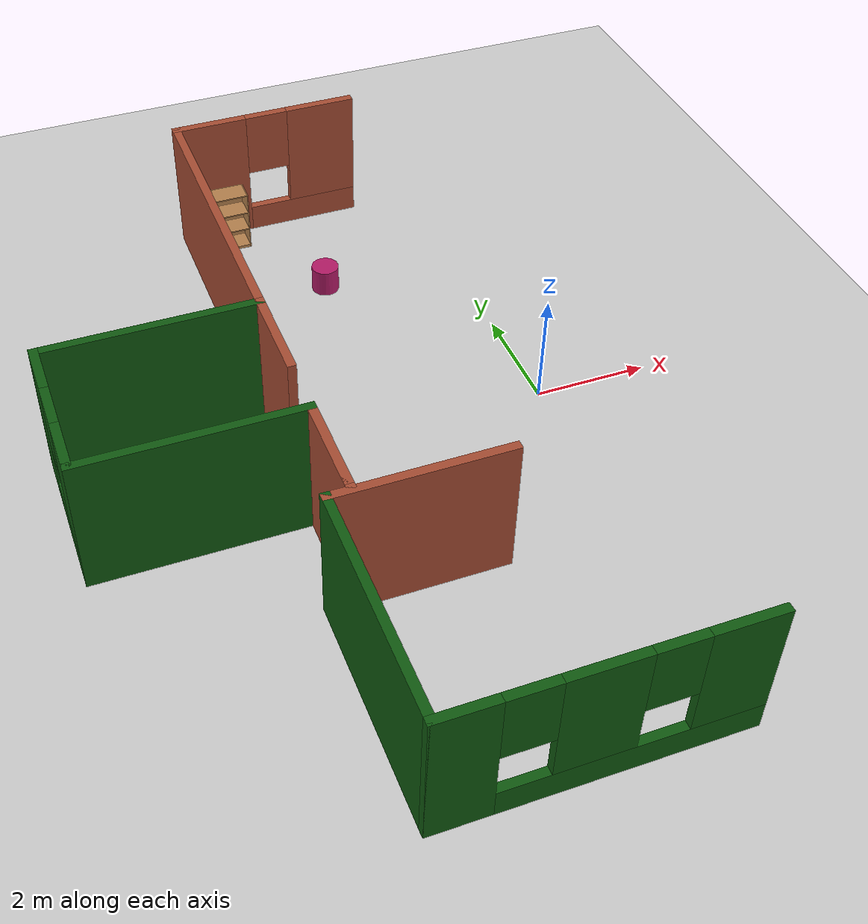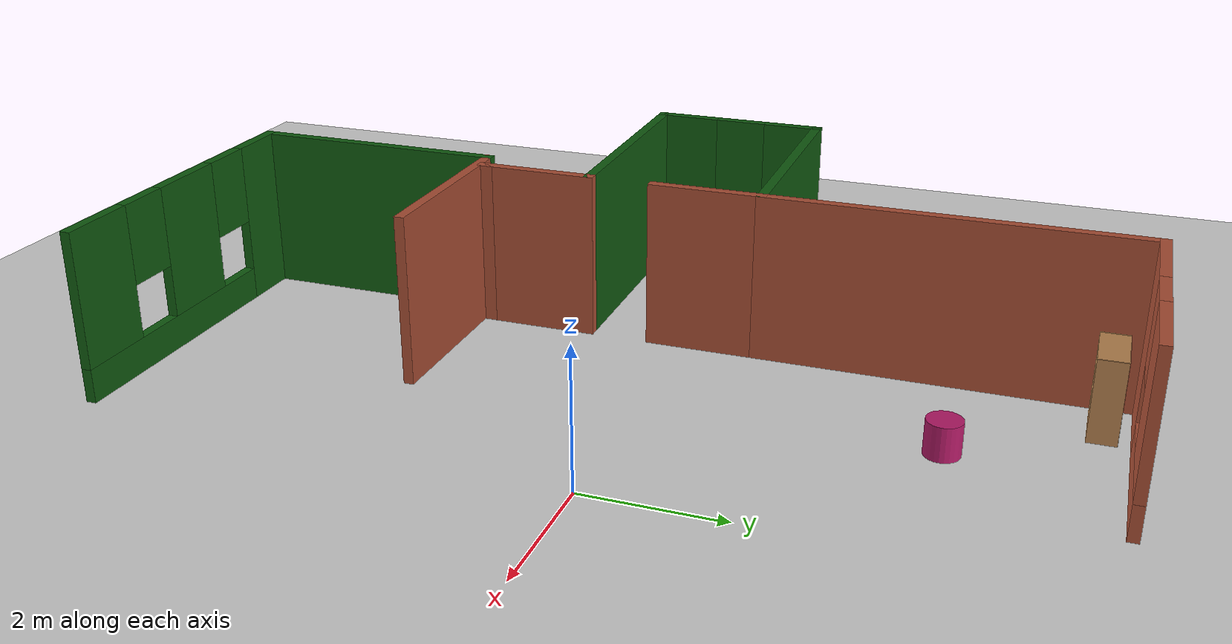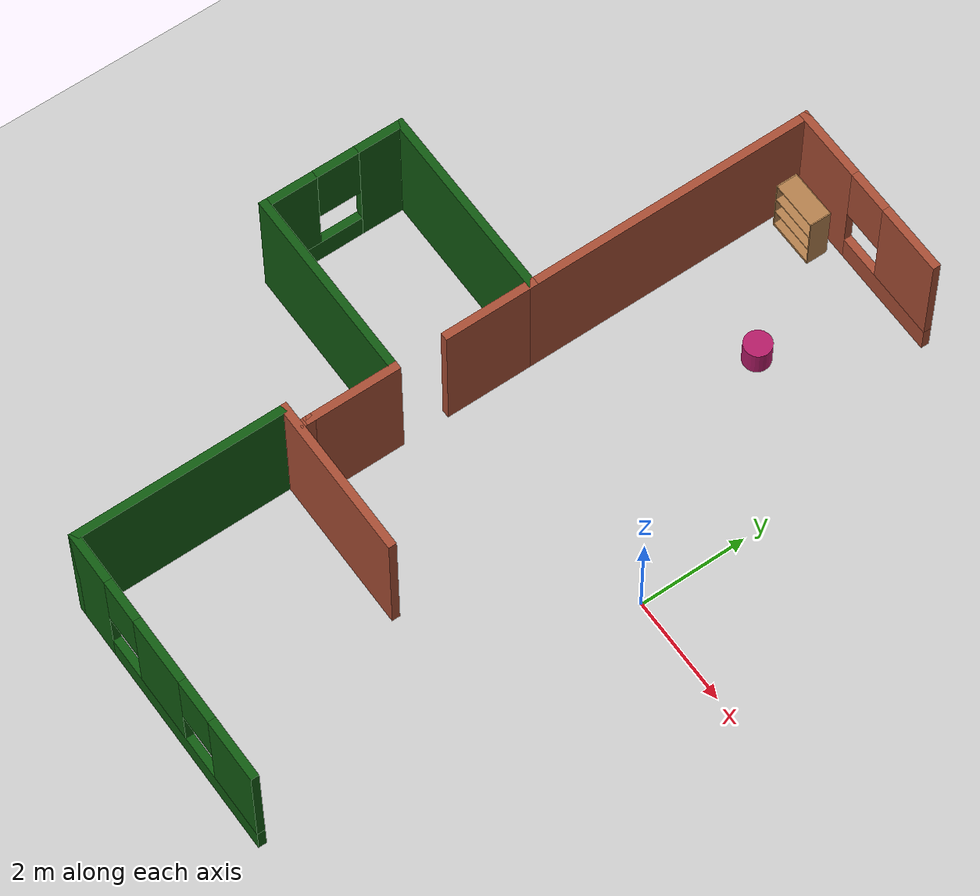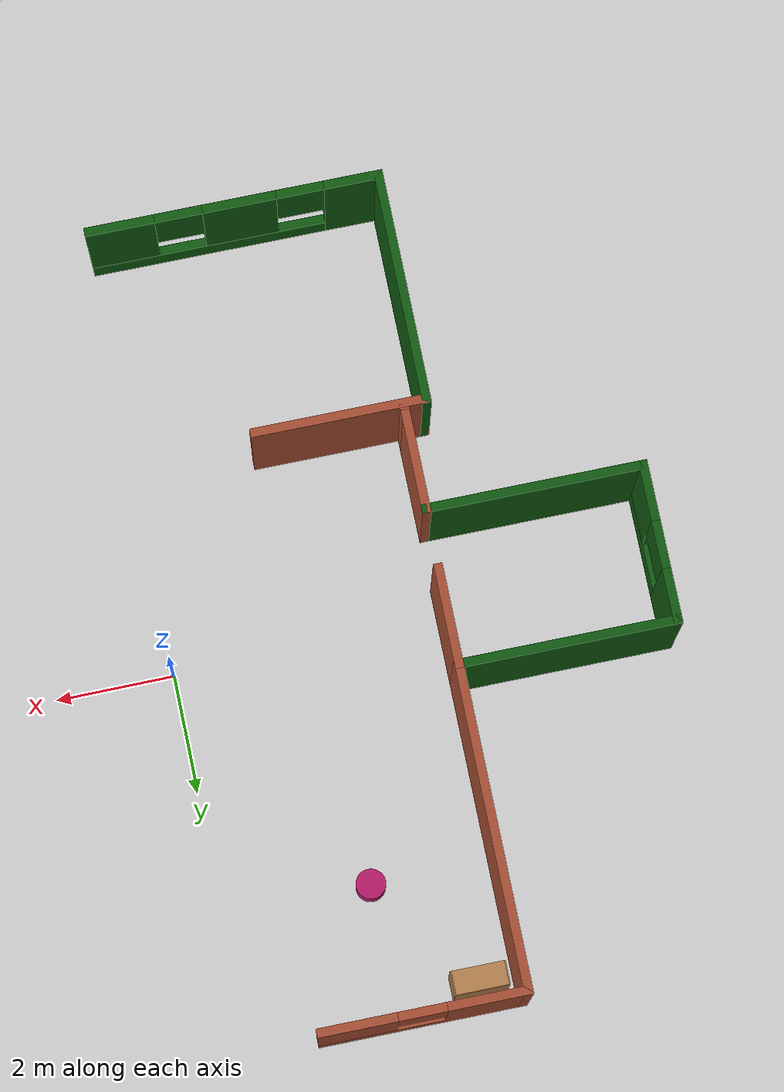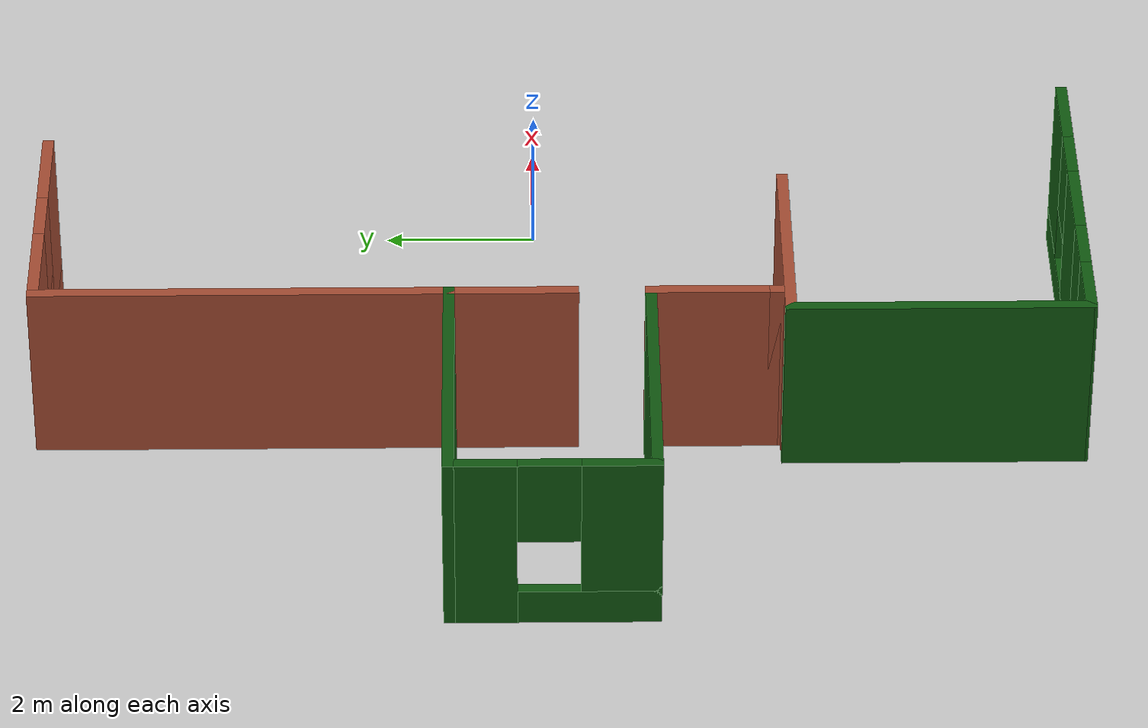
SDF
<sdf version="1.6">
 <world name="default">
  <model name="ground_plane">
   <static>1</static>
   <link name="link">
    <collision name="collision">
     <geometry><plane><normal>0 0 1</normal><size>100 100</size></plane></geometry>
     <surface>
      <contact><collide_bitmask>65535</collide_bitmask></contact>
      <friction><ode><mu>100</mu><mu2>50</mu2></ode></friction>
     </surface>
    </collision>
    <visual name="visual">
     <cast_shadows>0</cast_shadows>
     <geometry><plane><normal>0 0 1</normal><size>100 100</size></plane></geometry>
     <material>
      <script><uri>file://media/materials/scripts/gazebo.material</uri><name>Gazebo/Grey</name></script>
     </material>
    </visual>
   </link>
  </model>
  <model name="apartment">
   <link name="Wall_0">
    <pose>-2.91418 -6.79442 0 0 -0 0</pose>
    <visual name="Wall_0_Visual_0">
     <pose>-1.99956 0 1.25 0 -0 0</pose>
     <geometry><box><size>1.00087 0.15 2.5</size></box></geometry>
     <material>
      <script><uri>file://media/materials/scripts/gazebo.material</uri><name>Gazebo/Grey</name></script>
      <ambient>0.0627451 0.352941 0.0627451 1</ambient>
     </material>
     <meta><layer>0</layer></meta>
    </visual>
    <visual name="Wall_0_Visual_1">
     <pose>0.500436 0 0.25 0 -0 0</pose>
     <geometry><box><size>3.99913 0.15 0.5</size></box></geometry>
     <material>
      <script><uri>file://media/materials/scripts/gazebo.material</uri><name>Gazebo/Grey</name></script>
      <ambient>0.0627451 0.352941 0.0627451 1</ambient>
     </material>
     <meta><layer>0</layer></meta>
    </visual>
    <visual name="Wall_0_Visual_2">
     <pose>-0.080142 0 1.5 0 -0 0</pose>
     <geometry><box><size>1.23797 0.15 2</size></box></geometry>
     <material>
      <script><uri>file://media/materials/scripts/gazebo.material</uri><name>Gazebo/Grey</name></script>
      <ambient>0.0627451 0.352941 0.0627451 1</ambient>
     </material>
     <meta><layer>0</layer></meta>
    </visual>
    <visual name="Wall_0_Visual_3">
     <pose>1.91942 0 1.5 0 -0 0</pose>
     <geometry><box><size>1.16116 0.15 2</size></box></geometry>
     <material>
      <script><uri>file://media/materials/scripts/gazebo.material</uri><name>Gazebo/Grey</name></script>
      <ambient>0.0627451 0.352941 0.0627451 1</ambient>
     </material>
     <meta><layer>0</layer></meta>
    </visual>
    <visual name="Wall_0_Visual_4">
     <pose>-1.09913 0 1.9 0 -0 0</pose>
     <geometry><box><size>0.8 0.15 1.2</size></box></geometry>
     <material>
      <script><uri>file://media/materials/scripts/gazebo.material</uri><name>Gazebo/Grey</name></script>
      <ambient>0.0627451 0.352941 0.0627451 1</ambient>
     </material>
     <meta><layer>0</layer></meta>
    </visual>
    <visual name="Wall_0_Visual_5">
     <pose>0.938844 0 1.9 0 -0 0</pose>
     <geometry><box><size>0.8 0.15 1.2</size></box></geometry>
     <material>
      <script><uri>file://media/materials/scripts/gazebo.material</uri><name>Gazebo/Grey</name></script>
      <ambient>0.0627451 0.352941 0.0627451 1</ambient>
     </material>
     <meta><layer>0</layer></meta>
    </visual>
    <collision name="Wall_0_Collision_0">
     <pose>-1.99956 0 1.25 0 -0 0</pose>
     <geometry><box><size>1.00087 0.15 2.5</size></box></geometry>
     <surface>
      <friction>
       <ode><mu>1</mu><mu2>1</mu2><fdir1>0 0 0</fdir1><slip1>0</slip1><slip2>0</slip2></ode>
       <torsional>
        <coefficient>1</coefficient>
        <patch_radius>0</patch_radius>
        <surface_radius>0</surface_radius>
        <use_patch_radius>1</use_patch_radius>
        <ode><slip>0</slip></ode>
       </torsional>
      </friction>
      <bounce><restitution_coefficient>0</restitution_coefficient><threshold>1e+06</threshold></bounce>
      <contact>
       <collide_without_contact>0</collide_without_contact>
       <collide_without_contact_bitmask>1</collide_without_contact_bitmask>
       <collide_bitmask>1</collide_bitmask>
       <ode>
        <soft_cfm>0</soft_cfm>
        <soft_erp>0.2</soft_erp>
        <kp>1e+13</kp>
        <kd>1</kd>
        <max_vel>0.01</max_vel>
        <min_depth>0</min_depth>
       </ode>
       <bullet>
        <split_impulse>1</split_impulse>
        <split_impulse_penetration_threshold>-0.01</split_impulse_penetration_threshold>
        <soft_cfm>0</soft_cfm>
        <soft_erp>0.2</soft_erp>
        <kp>1e+13</kp>
        <kd>1</kd>
       </bullet>
      </contact>
     </surface>
    </collision>
    <collision name="Wall_0_Collision_1">
     <pose>0.500436 0 0.25 0 -0 0</pose>
     <geometry><box><size>3.99913 0.15 0.5</size></box></geometry>
     <surface>
      <friction>
       <ode><mu>1</mu><mu2>1</mu2><fdir1>0 0 0</fdir1><slip1>0</slip1><slip2>0</slip2></ode>
       <torsional>
        <coefficient>1</coefficient>
        <patch_radius>0</patch_radius>
        <surface_radius>0</surface_radius>
        <use_patch_radius>1</use_patch_radius>
        <ode><slip>0</slip></ode>
       </torsional>
      </friction>
      <bounce><restitution_coefficient>0</restitution_coefficient><threshold>1e+06</threshold></bounce>
      <contact>
       <collide_without_contact>0</collide_without_contact>
       <collide_without_contact_bitmask>1</collide_without_contact_bitmask>
       <collide_bitmask>1</collide_bitmask>
       <ode>
        <soft_cfm>0</soft_cfm>
        <soft_erp>0.2</soft_erp>
        <kp>1e+13</kp>
        <kd>1</kd>
        <max_vel>0.01</max_vel>
        <min_depth>0</min_depth>
       </ode>
       <bullet>
        <split_impulse>1</split_impulse>
        <split_impulse_penetration_threshold>-0.01</split_impulse_penetration_threshold>
        <soft_cfm>0</soft_cfm>
        <soft_erp>0.2</soft_erp>
        <kp>1e+13</kp>
        <kd>1</kd>
       </bullet>
      </contact>
     </surface>
    </collision>
    <collision name="Wall_0_Collision_2">
     <pose>-0.080142 0 1.5 0 -0 0</pose>
     <geometry><box><size>1.23797 0.15 2</size></box></geometry>
     <surface>
      <friction>
       <ode><mu>1</mu><mu2>1</mu2><fdir1>0 0 0</fdir1><slip1>0</slip1><slip2>0</slip2></ode>
       <torsional>
        <coefficient>1</coefficient>
        <patch_radius>0</patch_radius>
        <surface_radius>0</surface_radius>
        <use_patch_radius>1</use_patch_radius>
        <ode><slip>0</slip></ode>
       </torsional>
      </friction>
      <bounce><restitution_coefficient>0</restitution_coefficient><threshold>1e+06</threshold></bounce>
      <contact>
       <collide_without_contact>0</collide_without_contact>
       <collide_without_contact_bitmask>1</collide_without_contact_bitmask>
       <collide_bitmask>1</collide_bitmask>
       <ode>
        <soft_cfm>0</soft_cfm>
        <soft_erp>0.2</soft_erp>
        <kp>1e+13</kp>
        <kd>1</kd>
        <max_vel>0.01</max_vel>
        <min_depth>0</min_depth>
       </ode>
       <bullet>
        <split_impulse>1</split_impulse>
        <split_impulse_penetration_threshold>-0.01</split_impulse_penetration_threshold>
        <soft_cfm>0</soft_cfm>
        <soft_erp>0.2</soft_erp>
        <kp>1e+13</kp>
        <kd>1</kd>
       </bullet>
      </contact>
     </surface>
    </collision>
    <collision name="Wall_0_Collision_3">
     <pose>1.91942 0 1.5 0 -0 0</pose>
     <geometry><box><size>1.16116 0.15 2</size></box></geometry>
     <surface>
      <friction>
       <ode><mu>1</mu><mu2>1</mu2><fdir1>0 0 0</fdir1><slip1>0</slip1><slip2>0</slip2></ode>
       <torsional>
        <coefficient>1</coefficient>
        <patch_radius>0</patch_radius>
        <surface_radius>0</surface_radius>
        <use_patch_radius>1</use_patch_radius>
        <ode><slip>0</slip></ode>
       </torsional>
      </friction>
      <bounce><restitution_coefficient>0</restitution_coefficient><threshold>1e+06</threshold></bounce>
      <contact>
       <collide_without_contact>0</collide_without_contact>
       <collide_without_contact_bitmask>1</collide_without_contact_bitmask>
       <collide_bitmask>1</collide_bitmask>
       <ode>
        <soft_cfm>0</soft_cfm>
        <soft_erp>0.2</soft_erp>
        <kp>1e+13</kp>
        <kd>1</kd>
        <max_vel>0.01</max_vel>
        <min_depth>0</min_depth>
       </ode>
       <bullet>
        <split_impulse>1</split_impulse>
        <split_impulse_penetration_threshold>-0.01</split_impulse_penetration_threshold>
        <soft_cfm>0</soft_cfm>
        <soft_erp>0.2</soft_erp>
        <kp>1e+13</kp>
        <kd>1</kd>
       </bullet>
      </contact>
     </surface>
    </collision>
    <collision name="Wall_0_Collision_4">
     <pose>-1.09913 0 1.9 0 -0 0</pose>
     <geometry><box><size>0.8 0.15 1.2</size></box></geometry>
     <surface>
      <friction>
       <ode><mu>1</mu><mu2>1</mu2><fdir1>0 0 0</fdir1><slip1>0</slip1><slip2>0</slip2></ode>
       <torsional>
        <coefficient>1</coefficient>
        <patch_radius>0</patch_radius>
        <surface_radius>0</surface_radius>
        <use_patch_radius>1</use_patch_radius>
        <ode><slip>0</slip></ode>
       </torsional>
      </friction>
      <bounce><restitution_coefficient>0</restitution_coefficient><threshold>1e+06</threshold></bounce>
      <contact>
       <collide_without_contact>0</collide_without_contact>
       <collide_without_contact_bitmask>1</collide_without_contact_bitmask>
       <collide_bitmask>1</collide_bitmask>
       <ode>
        <soft_cfm>0</soft_cfm>
        <soft_erp>0.2</soft_erp>
        <kp>1e+13</kp>
        <kd>1</kd>
        <max_vel>0.01</max_vel>
        <min_depth>0</min_depth>
       </ode>
       <bullet>
        <split_impulse>1</split_impulse>
        <split_impulse_penetration_threshold>-0.01</split_impulse_penetration_threshold>
        <soft_cfm>0</soft_cfm>
        <soft_erp>0.2</soft_erp>
        <kp>1e+13</kp>
        <kd>1</kd>
       </bullet>
      </contact>
     </surface>
    </collision>
    <collision name="Wall_0_Collision_5">
     <pose>0.938844 0 1.9 0 -0 0</pose>
     <geometry><box><size>0.8 0.15 1.2</size></box></geometry>
     <surface>
      <friction>
       <ode><mu>1</mu><mu2>1</mu2><fdir1>0 0 0</fdir1><slip1>0</slip1><slip2>0</slip2></ode>
       <torsional>
        <coefficient>1</coefficient>
        <patch_radius>0</patch_radius>
        <surface_radius>0</surface_radius>
        <use_patch_radius>1</use_patch_radius>
        <ode><slip>0</slip></ode>
       </torsional>
      </friction>
      <bounce><restitution_coefficient>0</restitution_coefficient><threshold>1e+06</threshold></bounce>
      <contact>
       <collide_without_contact>0</collide_without_contact>
       <collide_without_contact_bitmask>1</collide_without_contact_bitmask>
       <collide_bitmask>1</collide_bitmask>
       <ode>
        <soft_cfm>0</soft_cfm>
        <soft_erp>0.2</soft_erp>
        <kp>1e+13</kp>
        <kd>1</kd>
        <max_vel>0.01</max_vel>
        <min_depth>0</min_depth>
       </ode>
       <bullet>
        <split_impulse>1</split_impulse>
        <split_impulse_penetration_threshold>-0.01</split_impulse_penetration_threshold>
        <soft_cfm>0</soft_cfm>
        <soft_erp>0.2</soft_erp>
        <kp>1e+13</kp>
        <kd>1</kd>
       </bullet>
      </contact>
     </surface>
    </collision>
   </link>
   <link name="Wall_26">
    <pose>-8.56082 0.144415 0 0 0 -1.5708</pose>
    <visual name="Wall_26_Visual_0">
     <pose>-0.908752 0 1.25 0 -0 0</pose>
     <geometry><box><size>0.932496 0.15 2.5</size></box></geometry>
     <material>
      <script><uri>file://media/materials/scripts/gazebo.material</uri><name>Gazebo/Grey</name></script>
      <ambient>0.0627451 0.345098 0.0627451 1</ambient>
     </material>
     <meta><layer>0</layer></meta>
    </visual>
    <visual name="Wall_26_Visual_1">
     <pose>0.466248 0 0.25 0 -0 0</pose>
     <geometry><box><size>1.8175 0.15 0.5</size></box></geometry>
     <material>
      <script><uri>file://media/materials/scripts/gazebo.material</uri><name>Gazebo/Grey</name></script>
      <ambient>0.0627451 0.345098 0.0627451 1</ambient>
     </material>
     <meta><layer>0</layer></meta>
    </visual>
    <visual name="Wall_26_Visual_2">
     <pose>0.866248 0 1.5 0 -0 0</pose>
     <geometry><box><size>1.0175 0.15 2</size></box></geometry>
     <material>
      <script><uri>file://media/materials/scripts/gazebo.material</uri><name>Gazebo/Grey</name></script>
      <ambient>0.0627451 0.345098 0.0627451 1</ambient>
     </material>
     <meta><layer>0</layer></meta>
    </visual>
    <visual name="Wall_26_Visual_3">
     <pose>-0.042504 0 1.9 0 -0 0</pose>
     <geometry><box><size>0.8 0.15 1.2</size></box></geometry>
     <material>
      <script><uri>file://media/materials/scripts/gazebo.material</uri><name>Gazebo/Grey</name></script>
      <ambient>0.0627451 0.345098 0.0627451 1</ambient>
     </material>
     <meta><layer>0</layer></meta>
    </visual>
    <collision name="Wall_26_Collision_0">
     <pose>-0.908752 0 1.25 0 -0 0</pose>
     <geometry><box><size>0.932496 0.15 2.5</size></box></geometry>
     <surface>
      <friction>
       <ode><mu>1</mu><mu2>1</mu2><fdir1>0 0 0</fdir1><slip1>0</slip1><slip2>0</slip2></ode>
       <torsional>
        <coefficient>1</coefficient>
        <patch_radius>0</patch_radius>
        <surface_radius>0</surface_radius>
        <use_patch_radius>1</use_patch_radius>
        <ode><slip>0</slip></ode>
       </torsional>
      </friction>
      <bounce><restitution_coefficient>0</restitution_coefficient><threshold>1e+06</threshold></bounce>
      <contact>
       <collide_without_contact>0</collide_without_contact>
       <collide_without_contact_bitmask>1</collide_without_contact_bitmask>
       <collide_bitmask>1</collide_bitmask>
       <ode>
        <soft_cfm>0</soft_cfm>
        <soft_erp>0.2</soft_erp>
        <kp>1e+13</kp>
        <kd>1</kd>
        <max_vel>0.01</max_vel>
        <min_depth>0</min_depth>
       </ode>
       <bullet>
        <split_impulse>1</split_impulse>
        <split_impulse_penetration_threshold>-0.01</split_impulse_penetration_threshold>
        <soft_cfm>0</soft_cfm>
        <soft_erp>0.2</soft_erp>
        <kp>1e+13</kp>
        <kd>1</kd>
       </bullet>
      </contact>
     </surface>
    </collision>
    <collision name="Wall_26_Collision_1">
     <pose>0.466248 0 0.25 0 -0 0</pose>
     <geometry><box><size>1.8175 0.15 0.5</size></box></geometry>
     <surface>
      <friction>
       <ode><mu>1</mu><mu2>1</mu2><fdir1>0 0 0</fdir1><slip1>0</slip1><slip2>0</slip2></ode>
       <torsional>
        <coefficient>1</coefficient>
        <patch_radius>0</patch_radius>
        <surface_radius>0</surface_radius>
        <use_patch_radius>1</use_patch_radius>
        <ode><slip>0</slip></ode>
       </torsional>
      </friction>
      <bounce><restitution_coefficient>0</restitution_coefficient><threshold>1e+06</threshold></bounce>
      <contact>
       <collide_without_contact>0</collide_without_contact>
       <collide_without_contact_bitmask>1</collide_without_contact_bitmask>
       <collide_bitmask>1</collide_bitmask>
       <ode>
        <soft_cfm>0</soft_cfm>
        <soft_erp>0.2</soft_erp>
        <kp>1e+13</kp>
        <kd>1</kd>
        <max_vel>0.01</max_vel>
        <min_depth>0</min_depth>
       </ode>
       <bullet>
        <split_impulse>1</split_impulse>
        <split_impulse_penetration_threshold>-0.01</split_impulse_penetration_threshold>
        <soft_cfm>0</soft_cfm>
        <soft_erp>0.2</soft_erp>
        <kp>1e+13</kp>
        <kd>1</kd>
       </bullet>
      </contact>
     </surface>
    </collision>
    <collision name="Wall_26_Collision_2">
     <pose>0.866248 0 1.5 0 -0 0</pose>
     <geometry><box><size>1.0175 0.15 2</size></box></geometry>
     <surface>
      <friction>
       <ode><mu>1</mu><mu2>1</mu2><fdir1>0 0 0</fdir1><slip1>0</slip1><slip2>0</slip2></ode>
       <torsional>
        <coefficient>1</coefficient>
        <patch_radius>0</patch_radius>
        <surface_radius>0</surface_radius>
        <use_patch_radius>1</use_patch_radius>
        <ode><slip>0</slip></ode>
       </torsional>
      </friction>
      <bounce><restitution_coefficient>0</restitution_coefficient><threshold>1e+06</threshold></bounce>
      <contact>
       <collide_without_contact>0</collide_without_contact>
       <collide_without_contact_bitmask>1</collide_without_contact_bitmask>
       <collide_bitmask>1</collide_bitmask>
       <ode>
        <soft_cfm>0</soft_cfm>
        <soft_erp>0.2</soft_erp>
        <kp>1e+13</kp>
        <kd>1</kd>
        <max_vel>0.01</max_vel>
        <min_depth>0</min_depth>
       </ode>
       <bullet>
        <split_impulse>1</split_impulse>
        <split_impulse_penetration_threshold>-0.01</split_impulse_penetration_threshold>
        <soft_cfm>0</soft_cfm>
        <soft_erp>0.2</soft_erp>
        <kp>1e+13</kp>
        <kd>1</kd>
       </bullet>
      </contact>
     </surface>
    </collision>
    <collision name="Wall_26_Collision_3">
     <pose>-0.042504 0 1.9 0 -0 0</pose>
     <geometry><box><size>0.8 0.15 1.2</size></box></geometry>
     <surface>
      <friction>
       <ode><mu>1</mu><mu2>1</mu2><fdir1>0 0 0</fdir1><slip1>0</slip1><slip2>0</slip2></ode>
       <torsional>
        <coefficient>1</coefficient>
        <patch_radius>0</patch_radius>
        <surface_radius>0</surface_radius>
        <use_patch_radius>1</use_patch_radius>
        <ode><slip>0</slip></ode>
       </torsional>
      </friction>
      <bounce><restitution_coefficient>0</restitution_coefficient><threshold>1e+06</threshold></bounce>
      <contact>
       <collide_without_contact>0</collide_without_contact>
       <collide_without_contact_bitmask>1</collide_without_contact_bitmask>
       <collide_bitmask>1</collide_bitmask>
       <ode>
        <soft_cfm>0</soft_cfm>
        <soft_erp>0.2</soft_erp>
        <kp>1e+13</kp>
        <kd>1</kd>
        <max_vel>0.01</max_vel>
        <min_depth>0</min_depth>
       </ode>
       <bullet>
        <split_impulse>1</split_impulse>
        <split_impulse_penetration_threshold>-0.01</split_impulse_penetration_threshold>
        <soft_cfm>0</soft_cfm>
        <soft_erp>0.2</soft_erp>
        <kp>1e+13</kp>
        <kd>1</kd>
       </bullet>
      </contact>
     </surface>
    </collision>
   </link>
   <link name="Wall_27">
    <pose>-6.76082 -1.15559 0 0 -0 0</pose>
    <visual name="Wall_27_Visual">
     <pose>0 0 1.25 0 -0 0</pose>
     <geometry><box><size>3.75 0.15 2.5</size></box></geometry>
     <material>
      <script><uri>file://media/materials/scripts/gazebo.material</uri><name>Gazebo/Grey</name></script>
      <ambient>0.0627451 0.345098 0.0627451 1</ambient>
     </material>
     <meta><layer>0</layer></meta>
    </visual>
    <collision name="Wall_27_Collision">
     <pose>0 0 1.25 0 -0 0</pose>
     <geometry><box><size>3.75 0.15 2.5</size></box></geometry>
     <surface>
      <friction>
       <ode><mu>1</mu><mu2>1</mu2><fdir1>0 0 0</fdir1><slip1>0</slip1><slip2>0</slip2></ode>
       <torsional>
        <coefficient>1</coefficient>
        <patch_radius>0</patch_radius>
        <surface_radius>0</surface_radius>
        <use_patch_radius>1</use_patch_radius>
        <ode><slip>0</slip></ode>
       </torsional>
      </friction>
      <bounce><restitution_coefficient>0</restitution_coefficient><threshold>1e+06</threshold></bounce>
      <contact>
       <collide_without_contact>0</collide_without_contact>
       <collide_without_contact_bitmask>1</collide_without_contact_bitmask>
       <collide_bitmask>1</collide_bitmask>
       <ode>
        <soft_cfm>0</soft_cfm>
        <soft_erp>0.2</soft_erp>
        <kp>1e+13</kp>
        <kd>1</kd>
        <max_vel>0.01</max_vel>
        <min_depth>0</min_depth>
       </ode>
       <bullet>
        <split_impulse>1</split_impulse>
        <split_impulse_penetration_threshold>-0.01</split_impulse_penetration_threshold>
        <soft_cfm>0</soft_cfm>
        <soft_erp>0.2</soft_erp>
        <kp>1e+13</kp>
        <kd>1</kd>
       </bullet>
      </contact>
     </surface>
    </collision>
   </link>
   <link name="Wall_28">
    <pose>-4.96082 -1.95558 0 0 0 -1.5708</pose>
    <visual name="Wall_28_Visual">
     <pose>0 0 1.25 0 -0 0</pose>
     <geometry><box><size>1.75 0.15 2.5</size></box></geometry>
     <material>
      <script><uri>file://media/materials/scripts/gazebo.material</uri><name>Gazebo/Bricks</name></script>
      <ambient>1 1 1 1</ambient>
     </material>
     <meta><layer>0</layer></meta>
    </visual>
    <collision name="Wall_28_Collision">
     <pose>0 0 1.25 0 -0 0</pose>
     <geometry><box><size>1.75 0.15 2.5</size></box></geometry>
     <surface>
      <friction>
       <ode><mu>1</mu><mu2>1</mu2><fdir1>0 0 0</fdir1><slip1>0</slip1><slip2>0</slip2></ode>
       <torsional>
        <coefficient>1</coefficient>
        <patch_radius>0</patch_radius>
        <surface_radius>0</surface_radius>
        <use_patch_radius>1</use_patch_radius>
        <ode><slip>0</slip></ode>
       </torsional>
      </friction>
      <bounce><restitution_coefficient>0</restitution_coefficient><threshold>1e+06</threshold></bounce>
      <contact>
       <collide_without_contact>0</collide_without_contact>
       <collide_without_contact_bitmask>1</collide_without_contact_bitmask>
       <collide_bitmask>1</collide_bitmask>
       <ode>
        <soft_cfm>0</soft_cfm>
        <soft_erp>0.2</soft_erp>
        <kp>1e+13</kp>
        <kd>1</kd>
        <max_vel>0.01</max_vel>
        <min_depth>0</min_depth>
       </ode>
       <bullet>
        <split_impulse>1</split_impulse>
        <split_impulse_penetration_threshold>-0.01</split_impulse_penetration_threshold>
        <soft_cfm>0</soft_cfm>
        <soft_erp>0.2</soft_erp>
        <kp>1e+13</kp>
        <kd>1</kd>
       </bullet>
      </contact>
     </surface>
    </collision>
   </link>
   <link name="Wall_30">
    <pose>-4.96082 -2.80559 0 0 0 -1.5708</pose>
    <visual name="Wall_30_Visual">
     <pose>0 0 1.25 0 -0 0</pose>
     <geometry><box><size>0.25 0.15 2.5</size></box></geometry>
     <material>
      <script><uri>file://media/materials/scripts/gazebo.material</uri><name>Gazebo/Bricks</name></script>
      <ambient>1 1 1 1</ambient>
     </material>
     <meta><layer>0</layer></meta>
    </visual>
    <collision name="Wall_30_Collision">
     <pose>0 0 1.25 0 -0 0</pose>
     <geometry><box><size>0.25 0.15 2.5</size></box></geometry>
     <surface>
      <friction>
       <ode><mu>1</mu><mu2>1</mu2><fdir1>0 0 0</fdir1><slip1>0</slip1><slip2>0</slip2></ode>
       <torsional>
        <coefficient>1</coefficient>
        <patch_radius>0</patch_radius>
        <surface_radius>0</surface_radius>
        <use_patch_radius>1</use_patch_radius>
        <ode><slip>0</slip></ode>
       </torsional>
      </friction>
      <bounce><restitution_coefficient>0</restitution_coefficient><threshold>1e+06</threshold></bounce>
      <contact>
       <collide_without_contact>0</collide_without_contact>
       <collide_without_contact_bitmask>1</collide_without_contact_bitmask>
       <collide_bitmask>1</collide_bitmask>
       <ode>
        <soft_cfm>0</soft_cfm>
        <soft_erp>0.2</soft_erp>
        <kp>1e+13</kp>
        <kd>1</kd>
        <max_vel>0.01</max_vel>
        <min_depth>0</min_depth>
       </ode>
       <bullet>
        <split_impulse>1</split_impulse>
        <split_impulse_penetration_threshold>-0.01</split_impulse_penetration_threshold>
        <soft_cfm>0</soft_cfm>
        <soft_erp>0.2</soft_erp>
        <kp>1e+13</kp>
        <kd>1</kd>
       </bullet>
      </contact>
     </surface>
    </collision>
   </link>
   <link name="Wall_32">
    <pose>-6.76082 1.44442 0 0 -0 0</pose>
    <visual name="Wall_32_Visual">
     <pose>0 0 1.25 0 -0 0</pose>
     <geometry><box><size>3.75 0.15 2.5</size></box></geometry>
     <material>
      <script><uri>file://media/materials/scripts/gazebo.material</uri><name>Gazebo/Grey</name></script>
      <ambient>0.0627451 0.345098 0.0627451 1</ambient>
     </material>
     <meta><layer>0</layer></meta>
    </visual>
    <collision name="Wall_32_Collision">
     <pose>0 0 1.25 0 -0 0</pose>
     <geometry><box><size>3.75 0.15 2.5</size></box></geometry>
     <surface>
      <friction>
       <ode><mu>1</mu><mu2>1</mu2><fdir1>0 0 0</fdir1><slip1>0</slip1><slip2>0</slip2></ode>
       <torsional>
        <coefficient>1</coefficient>
        <patch_radius>0</patch_radius>
        <surface_radius>0</surface_radius>
        <use_patch_radius>1</use_patch_radius>
        <ode><slip>0</slip></ode>
       </torsional>
      </friction>
      <bounce><restitution_coefficient>0</restitution_coefficient><threshold>1e+06</threshold></bounce>
      <contact>
       <collide_without_contact>0</collide_without_contact>
       <collide_without_contact_bitmask>1</collide_without_contact_bitmask>
       <collide_bitmask>1</collide_bitmask>
       <ode>
        <soft_cfm>0</soft_cfm>
        <soft_erp>0.2</soft_erp>
        <kp>1e+13</kp>
        <kd>1</kd>
        <max_vel>0.01</max_vel>
        <min_depth>0</min_depth>
       </ode>
       <bullet>
        <split_impulse>1</split_impulse>
        <split_impulse_penetration_threshold>-0.01</split_impulse_penetration_threshold>
        <soft_cfm>0</soft_cfm>
        <soft_erp>0.2</soft_erp>
        <kp>1e+13</kp>
        <kd>1</kd>
       </bullet>
      </contact>
     </surface>
    </collision>
   </link>
   <link name="Wall_36">
    <pose>-3.28582 6.79441 0 0 -0 0</pose>
    <visual name="Wall_36_Visual_1">
     <pose>0.692709 0 0.25 0 -0 0</pose>
     <geometry><box><size>2.11458 0.15 0.5</size></box></geometry>
     <material>
      <script><uri>file://media/materials/scripts/gazebo.material</uri><name>Gazebo/Bricks</name></script>
      <ambient>1 1 1 1</ambient>
     </material>
     <meta><layer>0</layer></meta>
    </visual>
    <visual name="Wall_36_Visual_0">
     <pose>-1.05729 0 1.25 0 -0 0</pose>
     <geometry><box><size>1.38542 0.15 2.5</size></box></geometry>
     <material>
      <script><uri>file://media/materials/scripts/gazebo.material</uri><name>Gazebo/Bricks</name></script>
      <ambient>1 1 1 1</ambient>
     </material>
     <meta><layer>0</layer></meta>
    </visual>
    <visual name="Wall_36_Visual_2">
     <pose>1.09271 0 1.5 0 -0 0</pose>
     <geometry><box><size>1.31458 0.15 2</size></box></geometry>
     <material>
      <script><uri>file://media/materials/scripts/gazebo.material</uri><name>Gazebo/Bricks</name></script>
      <ambient>1 1 1 1</ambient>
     </material>
     <meta><layer>0</layer></meta>
    </visual>
    <visual name="Wall_36_Visual_3">
     <pose>0.035419 0 1.9 0 -0 0</pose>
     <geometry><box><size>0.8 0.15 1.2</size></box></geometry>
     <material>
      <script><uri>file://media/materials/scripts/gazebo.material</uri><name>Gazebo/Bricks</name></script>
      <ambient>1 1 1 1</ambient>
     </material>
     <meta><layer>0</layer></meta>
    </visual>
    <collision name="Wall_36_Collision_0">
     <pose>-1.05729 0 1.25 0 -0 0</pose>
     <geometry><box><size>1.38542 0.15 2.5</size></box></geometry>
     <surface>
      <friction>
       <ode><mu>1</mu><mu2>1</mu2><fdir1>0 0 0</fdir1><slip1>0</slip1><slip2>0</slip2></ode>
       <torsional>
        <coefficient>1</coefficient>
        <patch_radius>0</patch_radius>
        <surface_radius>0</surface_radius>
        <use_patch_radius>1</use_patch_radius>
        <ode><slip>0</slip></ode>
       </torsional>
      </friction>
      <bounce><restitution_coefficient>0</restitution_coefficient><threshold>1e+06</threshold></bounce>
      <contact>
       <collide_without_contact>0</collide_without_contact>
       <collide_without_contact_bitmask>1</collide_without_contact_bitmask>
       <collide_bitmask>1</collide_bitmask>
       <ode>
        <soft_cfm>0</soft_cfm>
        <soft_erp>0.2</soft_erp>
        <kp>1e+13</kp>
        <kd>1</kd>
        <max_vel>0.01</max_vel>
        <min_depth>0</min_depth>
       </ode>
       <bullet>
        <split_impulse>1</split_impulse>
        <split_impulse_penetration_threshold>-0.01</split_impulse_penetration_threshold>
        <soft_cfm>0</soft_cfm>
        <soft_erp>0.2</soft_erp>
        <kp>1e+13</kp>
        <kd>1</kd>
       </bullet>
      </contact>
     </surface>
    </collision>
    <collision name="Wall_36_Collision_1">
     <pose>0.692709 0 0.25 0 -0 0</pose>
     <geometry><box><size>2.11458 0.15 0.5</size></box></geometry>
     <surface>
      <friction>
       <ode><mu>1</mu><mu2>1</mu2><fdir1>0 0 0</fdir1><slip1>0</slip1><slip2>0</slip2></ode>
       <torsional>
        <coefficient>1</coefficient>
        <patch_radius>0</patch_radius>
        <surface_radius>0</surface_radius>
        <use_patch_radius>1</use_patch_radius>
        <ode><slip>0</slip></ode>
       </torsional>
      </friction>
      <bounce><restitution_coefficient>0</restitution_coefficient><threshold>1e+06</threshold></bounce>
      <contact>
       <collide_without_contact>0</collide_without_contact>
       <collide_without_contact_bitmask>1</collide_without_contact_bitmask>
       <collide_bitmask>1</collide_bitmask>
       <ode>
        <soft_cfm>0</soft_cfm>
        <soft_erp>0.2</soft_erp>
        <kp>1e+13</kp>
        <kd>1</kd>
        <max_vel>0.01</max_vel>
        <min_depth>0</min_depth>
       </ode>
       <bullet>
        <split_impulse>1</split_impulse>
        <split_impulse_penetration_threshold>-0.01</split_impulse_penetration_threshold>
        <soft_cfm>0</soft_cfm>
        <soft_erp>0.2</soft_erp>
        <kp>1e+13</kp>
        <kd>1</kd>
       </bullet>
      </contact>
     </surface>
    </collision>
    <collision name="Wall_36_Collision_2">
     <pose>1.09271 0 1.5 0 -0 0</pose>
     <geometry><box><size>1.31458 0.15 2</size></box></geometry>
     <surface>
      <friction>
       <ode><mu>1</mu><mu2>1</mu2><fdir1>0 0 0</fdir1><slip1>0</slip1><slip2>0</slip2></ode>
       <torsional>
        <coefficient>1</coefficient>
        <patch_radius>0</patch_radius>
        <surface_radius>0</surface_radius>
        <use_patch_radius>1</use_patch_radius>
        <ode><slip>0</slip></ode>
       </torsional>
      </friction>
      <bounce><restitution_coefficient>0</restitution_coefficient><threshold>1e+06</threshold></bounce>
      <contact>
       <collide_without_contact>0</collide_without_contact>
       <collide_without_contact_bitmask>1</collide_without_contact_bitmask>
       <collide_bitmask>1</collide_bitmask>
       <ode>
        <soft_cfm>0</soft_cfm>
        <soft_erp>0.2</soft_erp>
        <kp>1e+13</kp>
        <kd>1</kd>
        <max_vel>0.01</max_vel>
        <min_depth>0</min_depth>
       </ode>
       <bullet>
        <split_impulse>1</split_impulse>
        <split_impulse_penetration_threshold>-0.01</split_impulse_penetration_threshold>
        <soft_cfm>0</soft_cfm>
        <soft_erp>0.2</soft_erp>
        <kp>1e+13</kp>
        <kd>1</kd>
       </bullet>
      </contact>
     </surface>
    </collision>
    <collision name="Wall_36_Collision_3">
     <pose>0.035419 0 1.9 0 -0 0</pose>
     <geometry><box><size>0.8 0.15 1.2</size></box></geometry>
     <surface>
      <friction>
       <ode><mu>1</mu><mu2>1</mu2><fdir1>0 0 0</fdir1><slip1>0</slip1><slip2>0</slip2></ode>
       <torsional>
        <coefficient>1</coefficient>
        <patch_radius>0</patch_radius>
        <surface_radius>0</surface_radius>
        <use_patch_radius>1</use_patch_radius>
        <ode><slip>0</slip></ode>
       </torsional>
      </friction>
      <bounce><restitution_coefficient>0</restitution_coefficient><threshold>1e+06</threshold></bounce>
      <contact>
       <collide_without_contact>0</collide_without_contact>
       <collide_without_contact_bitmask>1</collide_without_contact_bitmask>
       <collide_bitmask>1</collide_bitmask>
       <ode>
        <soft_cfm>0</soft_cfm>
        <soft_erp>0.2</soft_erp>
        <kp>1e+13</kp>
        <kd>1</kd>
        <max_vel>0.01</max_vel>
        <min_depth>0</min_depth>
       </ode>
       <bullet>
        <split_impulse>1</split_impulse>
        <split_impulse_penetration_threshold>-0.01</split_impulse_penetration_threshold>
        <soft_cfm>0</soft_cfm>
        <soft_erp>0.2</soft_erp>
        <kp>1e+13</kp>
        <kd>1</kd>
       </bullet>
      </contact>
     </surface>
    </collision>
   </link>
   <link name="Wall_39">
    <pose>-4.96082 0.644415 0 0 0 -1.5708</pose>
    <visual name="Wall_39_Visual">
     <pose>0 0 1.25 0 -0 0</pose>
     <geometry><box><size>1.75 0.15 2.5</size></box></geometry>
     <material>
      <script><uri>file://media/materials/scripts/gazebo.material</uri><name>Gazebo/Bricks</name></script>
      <ambient>1 1 1 1</ambient>
     </material>
     <meta><layer>0</layer></meta>
    </visual>
    <collision name="Wall_39_Collision">
     <pose>0 0 1.25 0 -0 0</pose>
     <geometry><box><size>1.75 0.15 2.5</size></box></geometry>
     <surface>
      <friction>
       <ode><mu>1</mu><mu2>1</mu2><fdir1>0 0 0</fdir1><slip1>0</slip1><slip2>0</slip2></ode>
       <torsional>
        <coefficient>1</coefficient>
        <patch_radius>0</patch_radius>
        <surface_radius>0</surface_radius>
        <use_patch_radius>1</use_patch_radius>
        <ode><slip>0</slip></ode>
       </torsional>
      </friction>
      <bounce><restitution_coefficient>0</restitution_coefficient><threshold>1e+06</threshold></bounce>
      <contact>
       <collide_without_contact>0</collide_without_contact>
       <collide_without_contact_bitmask>1</collide_without_contact_bitmask>
       <collide_bitmask>1</collide_bitmask>
       <ode>
        <soft_cfm>0</soft_cfm>
        <soft_erp>0.2</soft_erp>
        <kp>1e+13</kp>
        <kd>1</kd>
        <max_vel>0.01</max_vel>
        <min_depth>0</min_depth>
       </ode>
       <bullet>
        <split_impulse>1</split_impulse>
        <split_impulse_penetration_threshold>-0.01</split_impulse_penetration_threshold>
        <soft_cfm>0</soft_cfm>
        <soft_erp>0.2</soft_erp>
        <kp>1e+13</kp>
        <kd>1</kd>
       </bullet>
      </contact>
     </surface>
    </collision>
   </link>
   <link name="Wall_41">
    <pose>-4.96082 4.11942 0 0 -0 1.5708</pose>
    <visual name="Wall_41_Visual">
     <pose>0 0 1.25 0 -0 0</pose>
     <geometry><box><size>5.5 0.15 2.5</size></box></geometry>
     <material>
      <script><uri>file://media/materials/scripts/gazebo.material</uri><name>Gazebo/Bricks</name></script>
      <ambient>1 1 1 1</ambient>
     </material>
     <meta><layer>0</layer></meta>
    </visual>
    <collision name="Wall_41_Collision">
     <pose>0 0 1.25 0 -0 0</pose>
     <geometry><box><size>5.5 0.15 2.5</size></box></geometry>
     <surface>
      <friction>
       <ode><mu>1</mu><mu2>1</mu2><fdir1>0 0 0</fdir1><slip1>0</slip1><slip2>0</slip2></ode>
       <torsional>
        <coefficient>1</coefficient>
        <patch_radius>0</patch_radius>
        <surface_radius>0</surface_radius>
        <use_patch_radius>1</use_patch_radius>
        <ode><slip>0</slip></ode>
       </torsional>
      </friction>
      <bounce><restitution_coefficient>0</restitution_coefficient><threshold>1e+06</threshold></bounce>
      <contact>
       <collide_without_contact>0</collide_without_contact>
       <collide_without_contact_bitmask>1</collide_without_contact_bitmask>
       <collide_bitmask>1</collide_bitmask>
       <ode>
        <soft_cfm>0</soft_cfm>
        <soft_erp>0.2</soft_erp>
        <kp>1e+13</kp>
        <kd>1</kd>
        <max_vel>0.01</max_vel>
        <min_depth>0</min_depth>
       </ode>
       <bullet>
        <split_impulse>1</split_impulse>
        <split_impulse_penetration_threshold>-0.01</split_impulse_penetration_threshold>
        <soft_cfm>0</soft_cfm>
        <soft_erp>0.2</soft_erp>
        <kp>1e+13</kp>
        <kd>1</kd>
       </bullet>
      </contact>
     </surface>
    </collision>
   </link>
   <link name="Wall_8">
    <pose>-5.33918 -4.86942 0 0 -0 1.5708</pose>
    <visual name="Wall_8_Visual">
     <pose>0 0 1.25 0 -0 0</pose>
     <geometry><box><size>4 0.15 2.5</size></box></geometry>
     <material>
      <script><uri>file://media/materials/scripts/gazebo.material</uri><name>Gazebo/Grey</name></script>
      <ambient>0.0627451 0.352941 0.0627451 1</ambient>
     </material>
     <meta><layer>0</layer></meta>
    </visual>
    <collision name="Wall_8_Collision">
     <pose>0 0 1.25 0 -0 0</pose>
     <geometry><box><size>4 0.15 2.5</size></box></geometry>
     <surface>
      <friction>
       <ode><mu>1</mu><mu2>1</mu2><fdir1>0 0 0</fdir1><slip1>0</slip1><slip2>0</slip2></ode>
       <torsional>
        <coefficient>1</coefficient>
        <patch_radius>0</patch_radius>
        <surface_radius>0</surface_radius>
        <use_patch_radius>1</use_patch_radius>
        <ode><slip>0</slip></ode>
       </torsional>
      </friction>
      <bounce><restitution_coefficient>0</restitution_coefficient><threshold>1e+06</threshold></bounce>
      <contact>
       <collide_without_contact>0</collide_without_contact>
       <collide_without_contact_bitmask>1</collide_without_contact_bitmask>
       <collide_bitmask>1</collide_bitmask>
       <ode>
        <soft_cfm>0</soft_cfm>
        <soft_erp>0.2</soft_erp>
        <kp>1e+13</kp>
        <kd>1</kd>
        <max_vel>0.01</max_vel>
        <min_depth>0</min_depth>
       </ode>
       <bullet>
        <split_impulse>1</split_impulse>
        <split_impulse_penetration_threshold>-0.01</split_impulse_penetration_threshold>
        <soft_cfm>0</soft_cfm>
        <soft_erp>0.2</soft_erp>
        <kp>1e+13</kp>
        <kd>1</kd>
       </bullet>
      </contact>
     </surface>
    </collision>
   </link>
   <link name="Wall_9">
    <pose>-3.91418 -2.94442 0 0 -0 0</pose>
    <visual name="Wall_9_Visual">
     <pose>0 0 1.25 0 -0 0</pose>
     <geometry><box><size>3 0.15 2.5</size></box></geometry>
     <material>
      <script><uri>file://media/materials/scripts/gazebo.material</uri><name>Gazebo/Bricks</name></script>
      <ambient>1 1 1 1</ambient>
     </material>
     <meta><layer>0</layer></meta>
    </visual>
    <collision name="Wall_9_Collision">
     <pose>0 0 1.25 0 -0 0</pose>
     <geometry><box><size>3 0.15 2.5</size></box></geometry>
     <surface>
      <friction>
       <ode><mu>1</mu><mu2>1</mu2><fdir1>0 0 0</fdir1><slip1>0</slip1><slip2>0</slip2></ode>
       <torsional>
        <coefficient>1</coefficient>
        <patch_radius>0</patch_radius>
        <surface_radius>0</surface_radius>
        <use_patch_radius>1</use_patch_radius>
        <ode><slip>0</slip></ode>
       </torsional>
      </friction>
      <bounce><restitution_coefficient>0</restitution_coefficient><threshold>1e+06</threshold></bounce>
      <contact>
       <collide_without_contact>0</collide_without_contact>
       <collide_without_contact_bitmask>1</collide_without_contact_bitmask>
       <collide_bitmask>1</collide_bitmask>
       <ode>
        <soft_cfm>0</soft_cfm>
        <soft_erp>0.2</soft_erp>
        <kp>1e+13</kp>
        <kd>1</kd>
        <max_vel>0.01</max_vel>
        <min_depth>0</min_depth>
       </ode>
       <bullet>
        <split_impulse>1</split_impulse>
        <split_impulse_penetration_threshold>-0.01</split_impulse_penetration_threshold>
        <soft_cfm>0</soft_cfm>
        <soft_erp>0.2</soft_erp>
        <kp>1e+13</kp>
        <kd>1</kd>
       </bullet>
      </contact>
     </surface>
    </collision>
   </link>
   <static>1</static>
   <pose>0.39963 -0.33144 0 0 -0 0</pose>
  </model>
  <model name="bookshelf_0">
   <static>1</static>
   <link name="link">
    <inertial><mass>1</mass></inertial>
    <collision name="back">
     <pose>0 0.005 0.6 0 -0 0</pose>
     <geometry><box><size>0.9 0.01 1.2</size></box></geometry>
    </collision>
    <visual name="visual1">
     <pose>0 0.005 0.6 0 -0 0</pose>
     <geometry><box><size>0.9 0.01 1.2</size></box></geometry>
     <material>
      <script><uri>file://media/materials/scripts/gazebo.material</uri><name>Gazebo/Wood</name></script>
     </material>
    </visual>
    <collision name="left_side">
     <pose>0.45 -0.195 0.6 0 -0 0</pose>
     <geometry><box><size>0.02 0.4 1.2</size></box></geometry>
    </collision>
    <visual name="visual2">
     <pose>0.45 -0.195 0.6 0 -0 0</pose>
     <geometry><box><size>0.02 0.4 1.2</size></box></geometry>
     <material>
      <script><uri>file://media/materials/scripts/gazebo.material</uri><name>Gazebo/Wood</name></script>
     </material>
    </visual>
    <collision name="right_side">
     <pose>-0.45 -0.195 0.6 0 -0 0</pose>
     <geometry><box><size>0.02 0.4 1.2</size></box></geometry>
    </collision>
    <visual name="visual3">
     <pose>-0.45 -0.195 0.6 0 -0 0</pose>
     <geometry><box><size>0.02 0.4 1.2</size></box></geometry>
     <material>
      <script><uri>file://media/materials/scripts/gazebo.material</uri><name>Gazebo/Wood</name></script>
     </material>
    </visual>
    <collision name="bottom">
     <pose>0 -0.195 0.03 0 -0 0</pose>
     <geometry><box><size>0.88 0.4 0.06</size></box></geometry>
    </collision>
    <visual name="visual4">
     <pose>0 -0.195 0.03 0 -0 0</pose>
     <geometry><box><size>0.88 0.4 0.06</size></box></geometry>
     <material>
      <script><uri>file://media/materials/scripts/gazebo.material</uri><name>Gazebo/Wood</name></script>
     </material>
    </visual>
    <collision name="top">
     <pose>0 -0.195 1.19 0 -0 0</pose>
     <geometry><box><size>0.88 0.4 0.02</size></box></geometry>
    </collision>
    <visual name="visual5">
     <pose>0 -0.195 1.19 0 -0 0</pose>
     <geometry><box><size>0.88 0.4 0.02</size></box></geometry>
     <material>
      <script><uri>file://media/materials/scripts/gazebo.material</uri><name>Gazebo/Wood</name></script>
     </material>
    </visual>
    <collision name="low_shelf">
     <pose>0 -0.195 0.43 0 -0 0</pose>
     <geometry><box><size>0.88 0.4 0.02</size></box></geometry>
    </collision>
    <visual name="visual6">
     <pose>0 -0.195 0.43 0 -0 0</pose>
     <geometry><box><size>0.88 0.4 0.02</size></box></geometry>
     <material>
      <script><uri>file://media/materials/scripts/gazebo.material</uri><name>Gazebo/Wood</name></script>
     </material>
    </visual>
    <collision name="high_shelf">
     <pose>0 -0.195 0.8 0 -0 0</pose>
     <geometry><box><size>0.88 0.4 0.02</size></box></geometry>
    </collision>
    <visual name="visual7">
     <pose>0 -0.195 0.8 0 -0 0</pose>
     <geometry><box><size>0.88 0.4 0.02</size></box></geometry>
     <material>
      <script><uri>file://media/materials/scripts/gazebo.material</uri><name>Gazebo/Wood</name></script>
     </material>
    </visual>
   </link>
   <pose>-3.91595 6.21969 0 0 -0 0</pose>
  </model>
  <model name="cylinder_chair">
   <link name="link">
    <inertial>
     <mass>1</mass>
     <inertia><ixx>0.145833</ixx><ixy>0</ixy><ixz>0</ixz><iyy>0.145833</iyy><iyz>0</iyz><izz>0.125</izz></inertia>
    </inertial>
    <visual name="visual">
     <geometry><cylinder><radius>0.25</radius><length>0.5</length></cylinder></geometry>
     <material>
      <script><name>Gazebo/Grey</name><uri>file://media/materials/scripts/gazebo.material</uri></script>
      <shader type="vertex"><normal_map>__default__</normal_map></shader>
      <ambient>0.7 0.1 0.4 1</ambient>
      <diffuse>0.7 0.7 0.7 1</diffuse>
      <specular>0.01 0.01 0.01 1</specular>
      <emissive>0 0 0 1</emissive>
     </material>
    </visual>
    <collision name="collision">
     <geometry><cylinder><radius>0.25</radius><length>0.5</length></cylinder></geometry>
     <surface>
      <friction>
       <ode><mu>1</mu><mu2>1</mu2><fdir1>0 0 0</fdir1><slip1>0</slip1><slip2>0</slip2></ode>
       <torsional>
        <coefficient>1</coefficient>
        <patch_radius>0</patch_radius>
        <surface_radius>0</surface_radius>
        <use_patch_radius>1</use_patch_radius>
        <ode><slip>0</slip></ode>
       </torsional>
      </friction>
      <bounce><restitution_coefficient>0</restitution_coefficient><threshold>1e+06</threshold></bounce>
      <contact>
       <collide_without_contact>0</collide_without_contact>
       <collide_without_contact_bitmask>1</collide_without_contact_bitmask>
       <collide_bitmask>1</collide_bitmask>
       <ode>
        <soft_cfm>0</soft_cfm>
        <soft_erp>0.2</soft_erp>
        <kp>1e+13</kp>
        <kd>1</kd>
        <max_vel>0.01</max_vel>
        <min_depth>0</min_depth>
       </ode>
       <bullet>
        <split_impulse>1</split_impulse>
        <split_impulse_penetration_threshold>-0.01</split_impulse_penetration_threshold>
        <soft_cfm>0</soft_cfm>
        <soft_erp>0.2</soft_erp>
        <kp>1e+13</kp>
        <kd>1</kd>
       </bullet>
      </contact>
     </surface>
    </collision>
   </link>
   <static>0</static>
   <pose>-2.50789 4.10549 0.249998 0 -0 0</pose>
  </model>
 </world>
</sdf>
